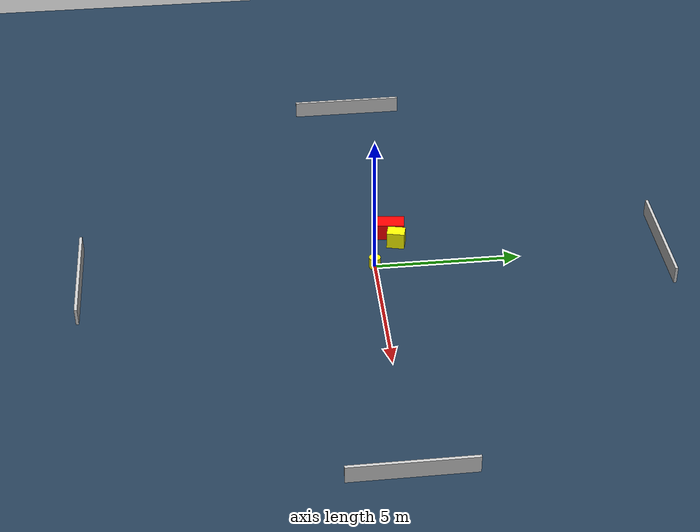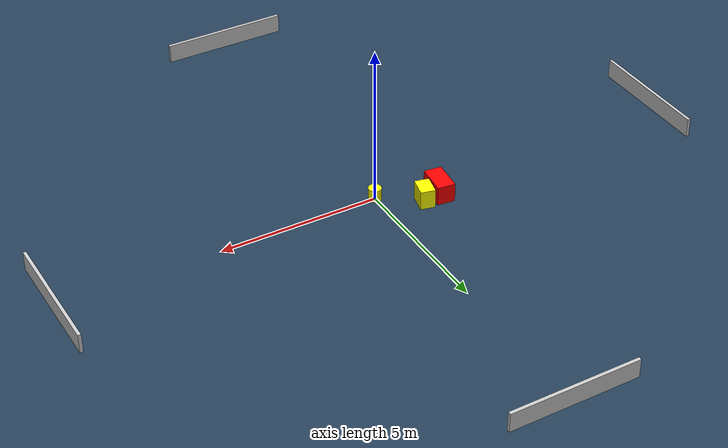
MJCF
<?xml version="1.0" ?>
<mujoco model="generated_environment">
  <option timestep="0.01" integrator="RK4" cone="elliptic"/>
  <default>
    <geom density="1"/>
  </default>
  <asset>
    <texture builtin="gradient" height="3072" name="skybox" rgb1="0.3 0.5 0.7" rgb2="0 0 0" type="skybox" width="512"/>
    <texture builtin="checker" height="300" name="groundplane" rgb1="0.2 0.3 0.4" rgb2="0.1 0.2 0.3" type="2d" width="300"/>
    <material name="groundplane" reflectance="0.2" texrepeat="5 5" texture="groundplane"/>
  </asset>
  <worldbody>
    <light dir="0 0 -1" directional="true" pos="0 0 1.5"/>
    <geom condim="3" friction="0.5 0.005 0.001" material="groundplane" name="floor" pos="0 0 0" size="0 0 0.05" type="plane"/>
    <body name="walls">
      <geom name="wall_1" condim="4" pos="-10.0 0.0 0.3" rgba="0.800000011920929 0.800000011920929 0.800000011920929 1.0" size="0.05 2.0 0.3" type="box"/>
      <geom name="wall_2" condim="4" pos="10.0 0.0 0.3" rgba="0.800000011920929 0.800000011920929 0.800000011920929 1.0" size="0.05 2.0 0.3" type="box"/>
      <geom name="wall_3" condim="4" pos="0.0 -10.0 0.3" rgba="0.800000011920929 0.800000011920929 0.800000011920929 1.0" size="2.0 0.05 0.3" type="box"/>
      <geom name="wall_4" condim="4" pos="0.0 10.0 0.3" rgba="0.800000011920929 0.800000011920929 0.800000011920929 1.0" size="2.0 0.05 0.3" type="box"/>
    </body>
    <body name="robot">
      <joint name="joint_x" type="slide" pos="0 0 0" axis="1 0 0"/>
      <joint name="joint_y" type="slide" pos="0 0 0" axis="0 1 0"/>
      <geom name="robot" type="cylinder" pos="0.0 0.0 0.2" size="0.2 0.2 0.0" mass="5.0" friction="1.0 0.005 0.0001" condim="4" rgba="1.0 1.0 0.0 1.0"/>
    </body>
    <body name="obstacle_1_movable">
      <geom name="obstacle_1_movable" condim="4" pos="-1.1702935564050618 0.8765595244259319 0.3" euler="0 0 346.7400022242535" friction="0.0 0.005 0.001" rgba="1.0 1.0 0.0 1.0" size="0.22761455242188164 0.30824194691796025 0.3" type="box" mass="0.1"/>
      <joint type="free"/>
    </body>
    <body name="obstacle_2_static">
      <geom name="obstacle_2_static" condim="4" pos="-1.7520794689048942 0.7446294775467949 0.3" euler="0 0 173.83601776412988" friction="0.0 0.005 0.001" rgba="1.0 0.0 0.0 1.0" size="0.2770214016957555 0.47916264772933415 0.3" type="box"/>
    </body>
  </worldbody>
  <actuator>
    <motor name="actuator_x" joint="joint_x" gear="1" ctrlrange="-1 1"/>
    <motor name="actuator_y" joint="joint_y" gear="1" ctrlrange="-1 1"/>
  </actuator>
</mujoco>
